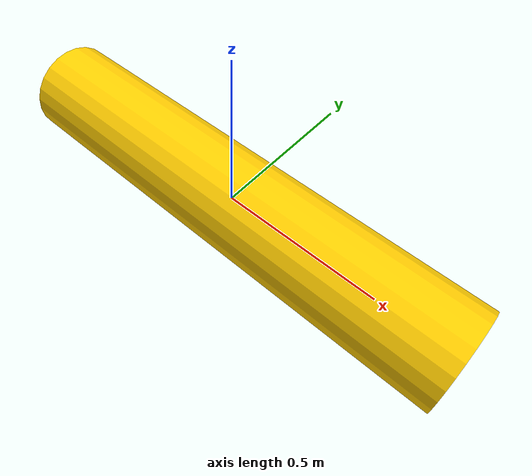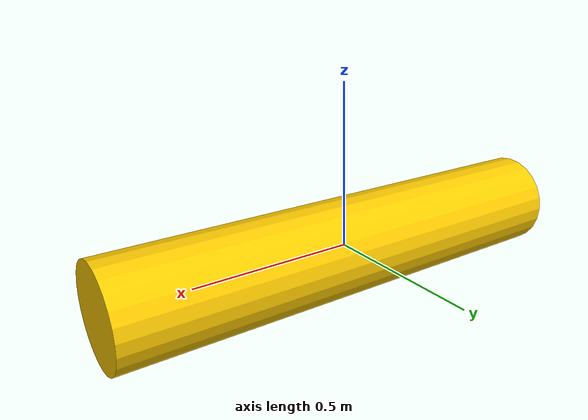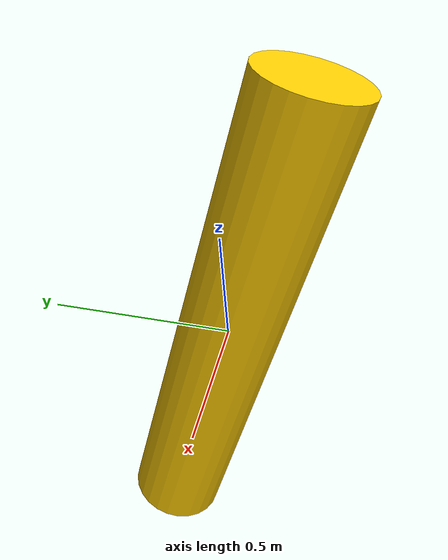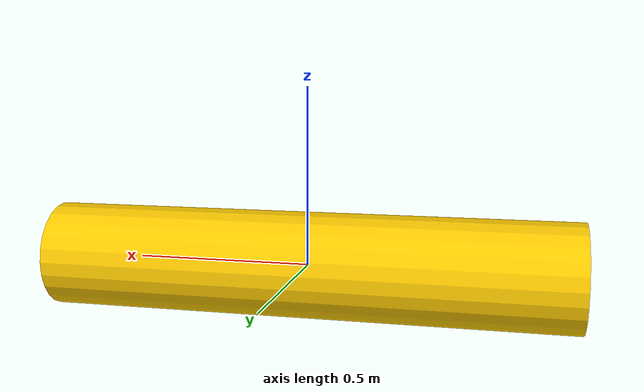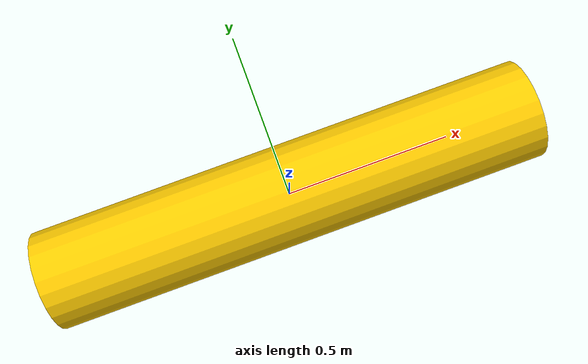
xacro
<?xml version="1.0"?>
<robot name="uuv_simple_model" xmlns:xacro="http://www.ros.org/wiki/xacro">

  <xacro:property name="color" value="1.0 0.8 0.0 1.0"/>
  <xacro:property name="length" value="1.5"/>
  <xacro:property name="radius" value="0.15"/>
  <link name="uuv_0/base_link">
    <visual>
      <origin xyz="0 0 0" rpy="0 1.5707 0"/>
      <geometry>
        <cylinder length="${length}" radius="${radius}"/>
      </geometry>
      <material name="yellow">
        <color rgba="${color}"/>
      </material>
    </visual>
    <collision>
      <origin xyz="0 0 0" rpy="0 1.5707 0"/>
      <geometry>
        <cylinder length="${length}" radius="${radius}"/>
      </geometry>
    </collision>
  </link>

</robot>
